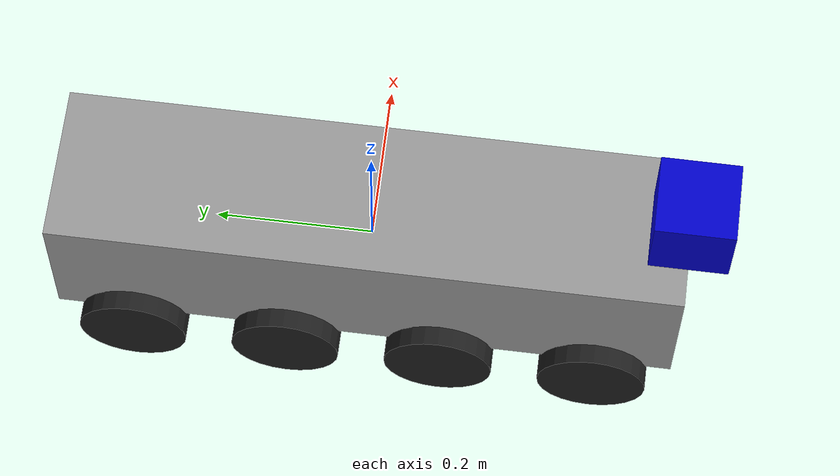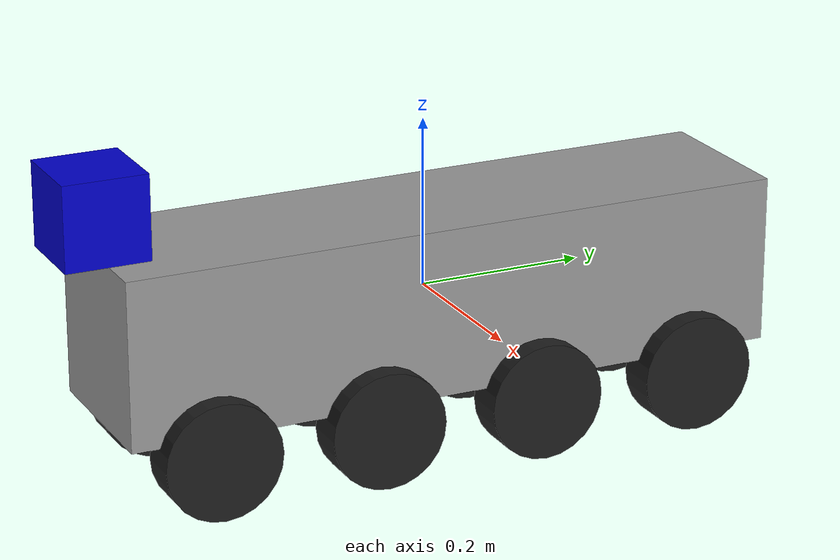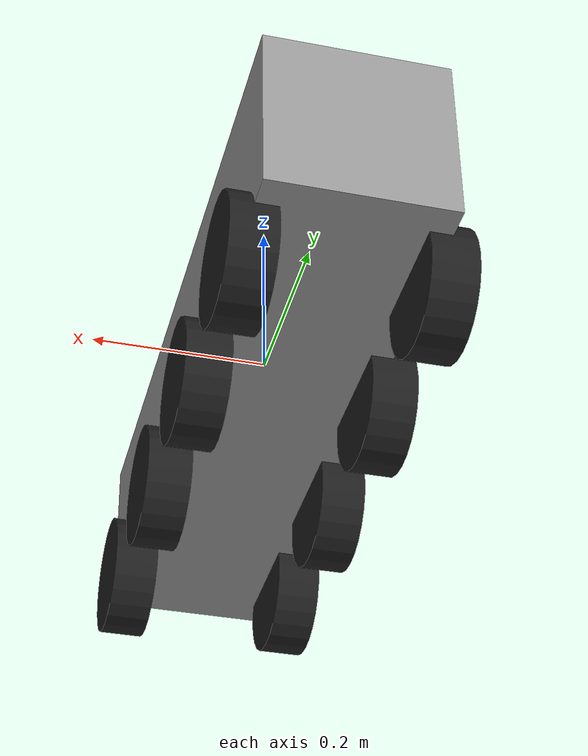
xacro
<?xml version="1.0"?>
<robot name="8x8" xmlns:xacro="http://www.ros.org/wiki/xacro">

<xacro:property name="wheelRadius" value="0.07"/>
<xacro:property name="wheelLength" value="0.05"/>
<xacro:property name="leftWheel" value="left_wheel"/>
<xacro:property name="rightWheel" value="right_wheel"/>

<xacro:macro name="wheel" params="side num reflect">
  <link name="${side}_${num}">
    <visual>
      <geometry>
        <cylinder length="${wheelLength}" radius="${wheelRadius}"/>
        <origin rpy="0 3.14592/2 0" xyz="${0.1 * reflect} ${0.3 - (0.2 * num)} -0.12"/>
      </geometry>
      <material name="Black"/>
    </visual>
    <collision>
      <geometry>
         <cylinder length="${wheelLength}" radius="${wheelRadius}"/>
         <origin rpy="0 3.14592/2 0" xyz="${0.1 * reflect} ${0.3 - (0.2 * num)} -0.12"/>
      </geometry>
    </collision>
    <inertial>
      <mass value = "1" />
      <inertia ixx="0.00143" ixy="0.0" ixz="0.0" iyy="0.00143" iyz="0.0" izz="0.00125"/>
    </inertial>

</link>

  <joint name="${side}_${num}_joint" type="continuous">
    <axis xyz="0 0 1" />
    <limit effort="10000.0" velocity="10"/>
    <parent link="base_link"/>
    <child link="${side}_${num}"/>
    <origin rpy="0 ${3.14592/2} 0" xyz="${0.1 * reflect} ${0.3 - (0.2 * num)} -0.12"/>
  </joint>

  <gazebo reference="${side}_${num}">
    <mu1 value="100.0"/>
    <mu2 value="50.0"/>
    <kp value="10000000.0" />
    <kd value="1.0" />
    <material>Gazebo/Red</material>
  </gazebo>
</xacro:macro>

<xacro:macro name="transmissions" params="num side">

    <transmission name="${side}_${num}_trans">
      <type>transmission_interface/SimpleTransmission</type>
      <actuator name="${side}_${num}_motor">
        <mechanicalReduction>1</mechanicalReduction>
        <hardwareInterface>hardware_interface/VelocityJointInterface</hardwareInterface>
      </actuator>
      <joint name="${side}_${num}_joint">
        <hardwareInterface>hardware_interface/VelocityJointInterface</hardwareInterface>
      </joint>
    </transmission>
</xacro:macro>
<gazebo>
	  <plugin filename="libgazebo_ros_diff_drive.so" name="differential_drive_controller_front">
		<rosDebugLevel>Debug</rosDebugLevel>
		<publishWheelTF>false</publishWheelTF>
		<robotNamespace>/</robotNamespace>
		<publishTf>1</publishTf>
		<publishOdomTF>true</publishOdomTF>
		<publishWheelJointState>false</publishWheelJointState>
		<alwaysOn>true</alwaysOn>
		<updateRate>100.0</updateRate>
		<leftJoint>left_wheel_joint</leftJoint>
		<rightJoint>right_wheel_joint</rightJoint>
		<wheelSeparation>1.5</wheelSeparation>
		<wheelDiameter>0.4</wheelDiameter>
                <odometrySource>1</odometrySource>
		<broadcastTF>1</broadcastTF>
		<wheelTorque>30</wheelTorque>
		<wheelAcceleration>1.8</wheelAcceleration>
		<commandTopic>cmd_vel</commandTopic>
		<odometryFrame>odom</odometryFrame>
		<odometryTopic>odom</odometryTopic>
		<robotBaseFrame>base_footprint</robotBaseFrame>
		<legacyMode>true</legacyMode>
	  </plugin>
	</gazebo>

<!-- ============================= SENSORS ========================================= -->
	<link name="hokuyo_link">
        <visual>
			<origin rpy="0 0 0" xyz="0 0 0"/>
            <geometry>
                <box size="0.1 0.1 0.1"/>
            </geometry>
			<material name="blue"/>
        </visual>
    </link>

	<joint name="hokuyo_joint" type="fixed">
		<parent link="base_link"/>
		<child link="hokuyo_link"/>
		<origin xyz="0.0 -0.4 0.15" rpy="0 0 -1.572" />
	</joint>

	<gazebo reference="hokuyo_link">
    <material>Gazebo/Grey</material>
	    <sensor name="head_hokuyo_sensor" type="ray">
	      <pose>0.05 0 0 0 0 0</pose>
	      <visualize>true</visualize>
	      <update_rate>40</update_rate>
	      <ray>
	        <scan>
	          <horizontal>
	            <samples>720</samples>
	            <resolution>1</resolution>
	            <min_angle>-1.570796</min_angle>
	            <max_angle>1.570796</max_angle>
	          </horizontal>
	        </scan>
	        <range>
	          <min>0.10</min>
	          <max>10.0</max>
	          <resolution>0.001</resolution>
	        </range>
	      </ray>
	      <plugin filename="libgazebo_ros_laser.so" name="gazebo_ros_head_hokuyo_controller">
	        <topicName>/scan</topicName>
	        <frameName>hokuyo_link</frameName>
	      </plugin>
	    </sensor>
  	</gazebo>

  <material name="blue">
    <color rgba="0 0 0.8 1"/>
  </material>

  <material name="white">
    <color rgba="1 1 1 1"/>
  </material>

 <material name="black">
    <color rgba="0 0 0 1"/>
  </material>

  <link name="base_link">
    <visual>
      <geometry>
        <box size="0.2 0.8 0.2"/>
      </geometry>
      <origin rpy="0 0 0" xyz="0 0 0"/>
      <material name="grey"/>
    </visual>
    <collision>
      <geometry>
        <box size="0.2 0.8 0.2"/>
      </geometry>
      <origin rpy="0 0 0" xyz="0 0 0"/>
    </collision>

  </link>

  <link name="dummy_link">
    <inertial>
      <mass value = "10" />
      <inertia ixx="0.05666" ixy="0.0" ixz="0.0" iyy="0.00666" iyz="0.0" izz="0.05666"/>
    </inertial>
  </link>

  <joint name="dummy_joint" type="fixed">
    <parent link="base_link"/>
    <child link="dummy_link"/>
    <origin rpy="0 0 0" xyz="0 0 0"/>
  </joint>

<xacro:wheel side="left_wheel" num="0" reflect="-1"/>
<xacro:wheel side="left_wheel" num="1" reflect="-1"/>
<xacro:wheel side="left_wheel" num="2" reflect="-1"/>
<xacro:wheel side="left_wheel" num="3" reflect="-1"/>
<xacro:wheel side="right_wheel" num="0" reflect="1"/>
<xacro:wheel side="right_wheel" num="1" reflect="1"/>
<xacro:wheel side="right_wheel" num="2" reflect="1"/>
<xacro:wheel side="right_wheel" num="3" reflect="1"/>

  <gazebo>
  <plugin name="gazebo_ros_control" filename="libgazebo_ros_control.so">
    <robotNamespace>/bot</robotNamespace>
  </plugin>
  </gazebo>

<xacro:transmissions side="left_wheel" num="0"/>
<xacro:transmissions side="left_wheel" num="1"/>
<xacro:transmissions side="left_wheel" num="2"/>
<xacro:transmissions side="left_wheel" num="3"/>
<xacro:transmissions side="right_wheel" num="0"/>
<xacro:transmissions side="right_wheel" num="1"/>
<xacro:transmissions side="right_wheel" num="2"/>
<xacro:transmissions side="right_wheel" num="3"/>

</robot>
